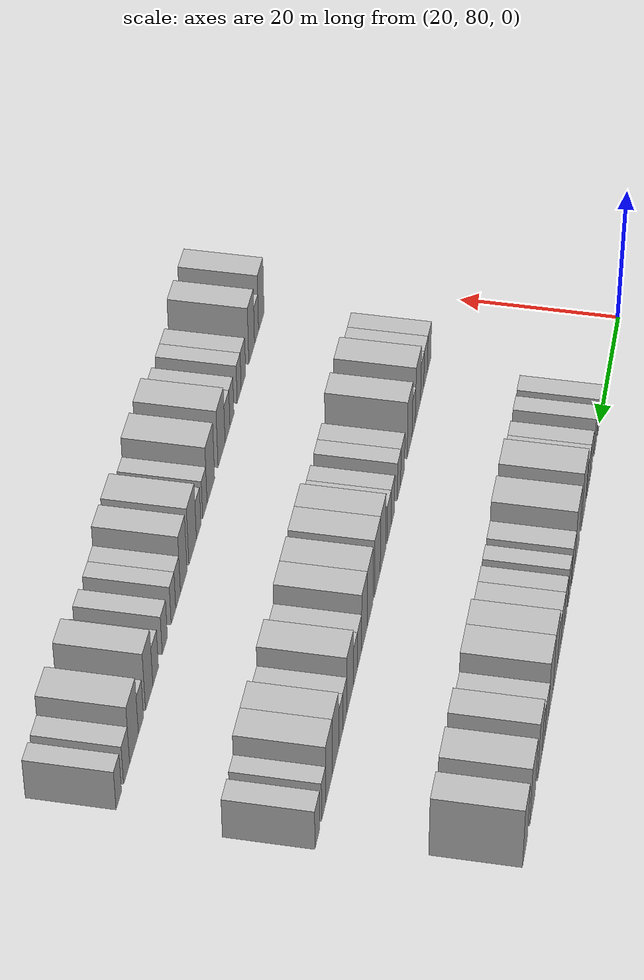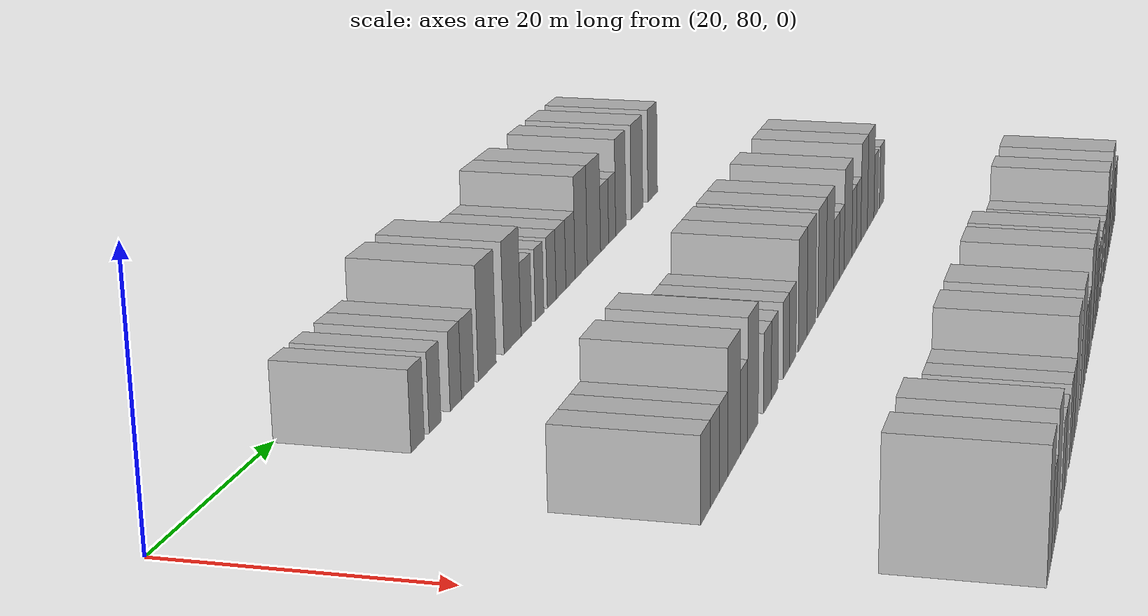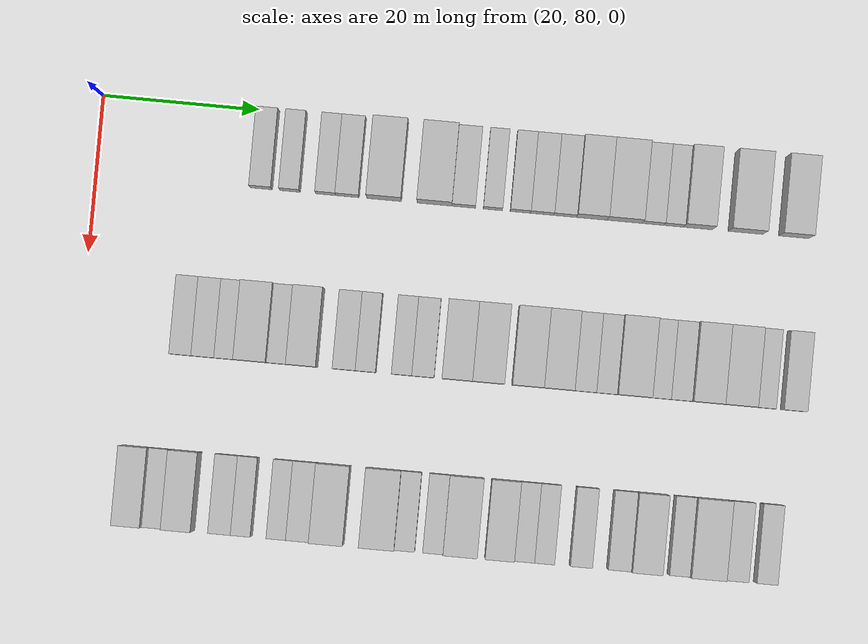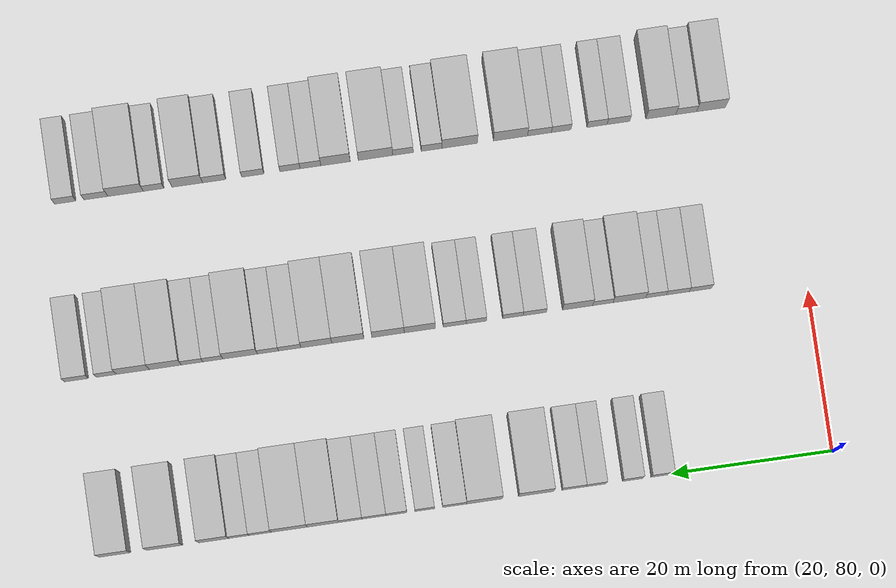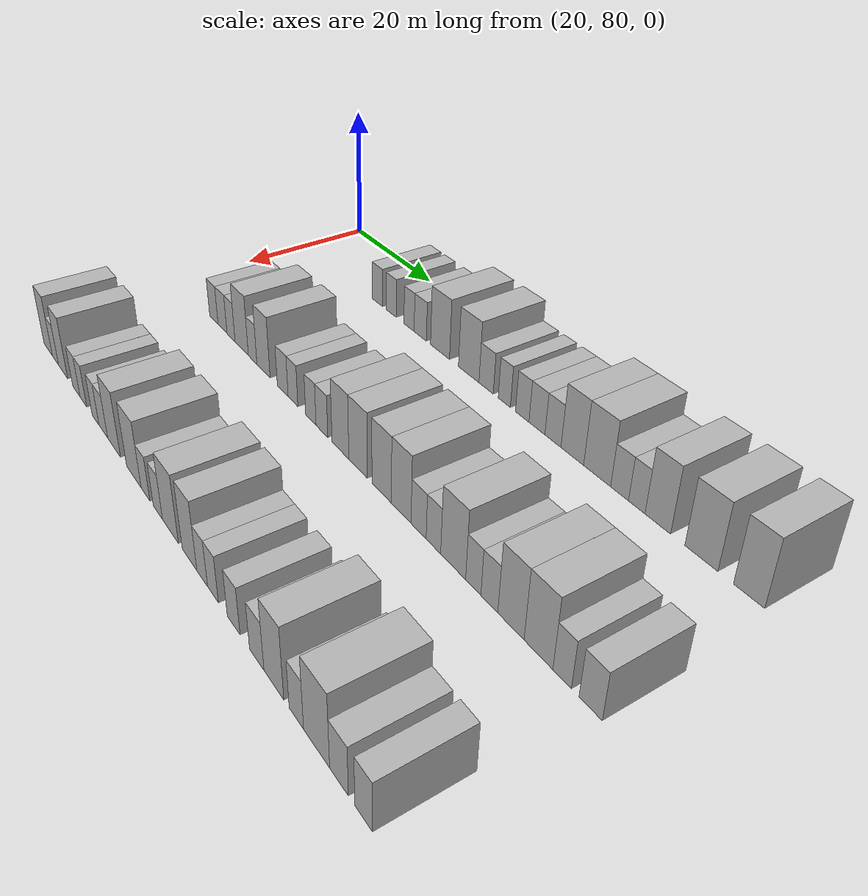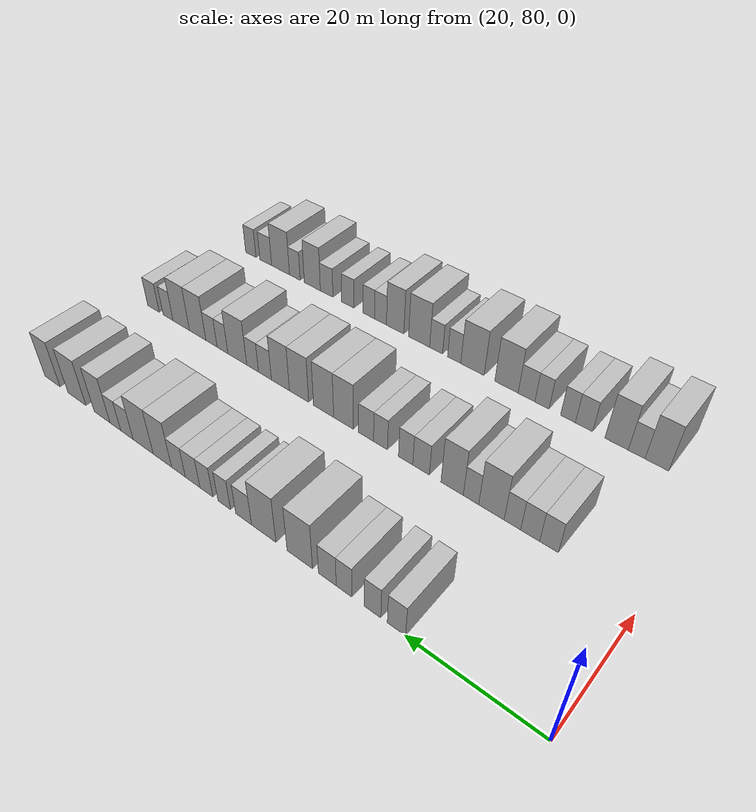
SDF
<sdf version="1.6">
 <world name="default">
  <model name="building_80">
   <static>1</static>
   <pose>25.0000 101.2119 0 0.000000 0.000000 0.000000</pose>
   <link name="link">
    <pose>0 0 3.00 0 0 0</pose>
    <collision name="collision"><geometry><box><size>10.0000 2.7655 6.0000</size></box></geometry></collision>
    <visual name="visual">
     <cast_shadows>0</cast_shadows>
     <geometry><box><size>10.0000 2.7655 6.0000</size></box></geometry>
     <material>
      <script>
       <uri>model://HANNAS_wall/materials/scripts</uri>
       <uri>model://HANNAS_wall/materials/textures</uri>
       <name>vrc/HANNAS_wall</name>
      </script>
     </material>
    </visual>
   </link>
  </model>
  <model name="building_81">
   <static>1</static>
   <pose>25.0000 104.8791 0 0.000000 0.000000 0.000000</pose>
   <link name="link">
    <pose>0 0 3.00 0 0 0</pose>
    <collision name="collision"><geometry><box><size>10.0000 2.5690 6.0000</size></box></geometry></collision>
    <visual name="visual">
     <cast_shadows>0</cast_shadows>
     <geometry><box><size>10.0000 2.5690 6.0000</size></box></geometry>
     <material>
      <script>
       <uri>model://HANNAS_wall/materials/scripts</uri>
       <uri>model://HANNAS_wall/materials/textures</uri>
       <name>vrc/HANNAS_wall</name>
      </script>
     </material>
    </visual>
   </link>
  </model>
  <model name="building_82">
   <static>1</static>
   <pose>25.0000 109.4383 0 0.000000 0.000000 0.000000</pose>
   <link name="link">
    <pose>0 0 3.00 0 0 0</pose>
    <collision name="collision"><geometry><box><size>10.0000 2.5493 6.0000</size></box></geometry></collision>
    <visual name="visual">
     <cast_shadows>0</cast_shadows>
     <geometry><box><size>10.0000 2.5493 6.0000</size></box></geometry>
     <material>
      <script>
       <uri>model://HANNAS_wall/materials/scripts</uri>
       <uri>model://HANNAS_wall/materials/textures</uri>
       <name>vrc/HANNAS_wall</name>
      </script>
     </material>
    </visual>
   </link>
  </model>
  <model name="building_83">
   <static>1</static>
   <pose>25.0000 112.1952 0 0.000000 0.000000 0.000000</pose>
   <link name="link">
    <pose>0 0 3.00 0 0 0</pose>
    <collision name="collision"><geometry><box><size>10.0000 2.9646 6.0000</size></box></geometry></collision>
    <visual name="visual">
     <cast_shadows>0</cast_shadows>
     <geometry><box><size>10.0000 2.9646 6.0000</size></box></geometry>
     <material>
      <script>
       <uri>model://HANNAS_wall/materials/scripts</uri>
       <uri>model://HANNAS_wall/materials/textures</uri>
       <name>vrc/HANNAS_wall</name>
      </script>
     </material>
    </visual>
   </link>
  </model>
  <model name="building_84">
   <static>1</static>
   <pose>25.0000 116.8782 0 0.000000 0.000000 0.000000</pose>
   <link name="link">
    <pose>0 0 4.50 0 0 0</pose>
    <collision name="collision"><geometry><box><size>10.0000 4.4013 9.0000</size></box></geometry></collision>
    <visual name="visual">
     <cast_shadows>0</cast_shadows>
     <geometry><box><size>10.0000 4.4013 9.0000</size></box></geometry>
     <material>
      <script>
       <uri>model://HANNAS_wall/materials/scripts</uri>
       <uri>model://HANNAS_wall/materials/textures</uri>
       <name>vrc/HANNAS_wall</name>
      </script>
     </material>
    </visual>
   </link>
  </model>
  <model name="building_85">
   <static>1</static>
   <pose>25.0000 123.3040 0 0.000000 0.000000 0.000000</pose>
   <link name="link">
    <pose>0 0 4.50 0 0 0</pose>
    <collision name="collision"><geometry><box><size>10.0000 4.4503 9.0000</size></box></geometry></collision>
    <visual name="visual">
     <cast_shadows>0</cast_shadows>
     <geometry><box><size>10.0000 4.4503 9.0000</size></box></geometry>
     <material>
      <script>
       <uri>model://HANNAS_wall/materials/scripts</uri>
       <uri>model://HANNAS_wall/materials/textures</uri>
       <name>vrc/HANNAS_wall</name>
      </script>
     </material>
    </visual>
   </link>
  </model>
  <model name="building_86">
   <static>1</static>
   <pose>25.0000 127.0189 0 0.000000 0.000000 0.000000</pose>
   <link name="link">
    <pose>0 0 3.00 0 0 0</pose>
    <collision name="collision"><geometry><box><size>10.0000 2.9796 6.0000</size></box></geometry></collision>
    <visual name="visual">
     <cast_shadows>0</cast_shadows>
     <geometry><box><size>10.0000 2.9796 6.0000</size></box></geometry>
     <material>
      <script>
       <uri>model://HANNAS_wall/materials/scripts</uri>
       <uri>model://HANNAS_wall/materials/textures</uri>
       <name>vrc/HANNAS_wall</name>
      </script>
     </material>
    </visual>
   </link>
  </model>
  <model name="building_87">
   <static>1</static>
   <pose>25.0000 130.7237 0 0.000000 0.000000 0.000000</pose>
   <link name="link">
    <pose>0 0 3.00 0 0 0</pose>
    <collision name="collision"><geometry><box><size>10.0000 2.4298 6.0000</size></box></geometry></collision>
    <visual name="visual">
     <cast_shadows>0</cast_shadows>
     <geometry><box><size>10.0000 2.4298 6.0000</size></box></geometry>
     <material>
      <script>
       <uri>model://HANNAS_wall/materials/scripts</uri>
       <uri>model://HANNAS_wall/materials/textures</uri>
       <name>vrc/HANNAS_wall</name>
      </script>
     </material>
    </visual>
   </link>
  </model>
  <model name="building_88">
   <static>1</static>
   <pose>25.0000 134.2324 0 0.000000 0.000000 0.000000</pose>
   <link name="link">
    <pose>0 0 3.00 0 0 0</pose>
    <collision name="collision"><geometry><box><size>10.0000 2.5876 6.0000</size></box></geometry></collision>
    <visual name="visual">
     <cast_shadows>0</cast_shadows>
     <geometry><box><size>10.0000 2.5876 6.0000</size></box></geometry>
     <material>
      <script>
       <uri>model://HANNAS_wall/materials/scripts</uri>
       <uri>model://HANNAS_wall/materials/textures</uri>
       <name>vrc/HANNAS_wall</name>
      </script>
     </material>
    </visual>
   </link>
  </model>
  <model name="building_89">
   <static>1</static>
   <pose>25.0000 137.0098 0 0.000000 0.000000 0.000000</pose>
   <link name="link">
    <pose>0 0 3.00 0 0 0</pose>
    <collision name="collision"><geometry><box><size>10.0000 2.9673 6.0000</size></box></geometry></collision>
    <visual name="visual">
     <cast_shadows>0</cast_shadows>
     <geometry><box><size>10.0000 2.9673 6.0000</size></box></geometry>
     <material>
      <script>
       <uri>model://HANNAS_wall/materials/scripts</uri>
       <uri>model://HANNAS_wall/materials/textures</uri>
       <name>vrc/HANNAS_wall</name>
      </script>
     </material>
    </visual>
   </link>
  </model>
  <model name="building_90">
   <static>1</static>
   <pose>25.0000 139.9342 0 0.000000 0.000000 0.000000</pose>
   <link name="link">
    <pose>0 0 3.00 0 0 0</pose>
    <collision name="collision"><geometry><box><size>10.0000 2.8815 6.0000</size></box></geometry></collision>
    <visual name="visual">
     <cast_shadows>0</cast_shadows>
     <geometry><box><size>10.0000 2.8815 6.0000</size></box></geometry>
     <material>
      <script>
       <uri>model://HANNAS_wall/materials/scripts</uri>
       <uri>model://HANNAS_wall/materials/textures</uri>
       <name>vrc/HANNAS_wall</name>
      </script>
     </material>
    </visual>
   </link>
  </model>
  <model name="building_91">
   <static>1</static>
   <pose>25.0000 143.3357 0 0.000000 0.000000 0.000000</pose>
   <link name="link">
    <pose>0 0 4.50 0 0 0</pose>
    <collision name="collision"><geometry><box><size>10.0000 3.9215 9.0000</size></box></geometry></collision>
    <visual name="visual">
     <cast_shadows>0</cast_shadows>
     <geometry><box><size>10.0000 3.9215 9.0000</size></box></geometry>
     <material>
      <script>
       <uri>model://HANNAS_wall/materials/scripts</uri>
       <uri>model://HANNAS_wall/materials/textures</uri>
       <name>vrc/HANNAS_wall</name>
      </script>
     </material>
    </visual>
   </link>
  </model>
  <model name="building_92">
   <static>1</static>
   <pose>25.0000 147.5176 0 0.000000 0.000000 0.000000</pose>
   <link name="link">
    <pose>0 0 4.50 0 0 0</pose>
    <collision name="collision"><geometry><box><size>10.0000 4.4425 9.0000</size></box></geometry></collision>
    <visual name="visual">
     <cast_shadows>0</cast_shadows>
     <geometry><box><size>10.0000 4.4425 9.0000</size></box></geometry>
     <material>
      <script>
       <uri>model://HANNAS_wall/materials/scripts</uri>
       <uri>model://HANNAS_wall/materials/textures</uri>
       <name>vrc/HANNAS_wall</name>
      </script>
     </material>
    </visual>
   </link>
  </model>
  <model name="building_93">
   <static>1</static>
   <pose>25.0000 151.1389 0 0.000000 0.000000 0.000000</pose>
   <link name="link">
    <pose>0 0 3.00 0 0 0</pose>
    <collision name="collision"><geometry><box><size>10.0000 2.7999 6.0000</size></box></geometry></collision>
    <visual name="visual">
     <cast_shadows>0</cast_shadows>
     <geometry><box><size>10.0000 2.7999 6.0000</size></box></geometry>
     <material>
      <script>
       <uri>model://HANNAS_wall/materials/scripts</uri>
       <uri>model://HANNAS_wall/materials/textures</uri>
       <name>vrc/HANNAS_wall</name>
      </script>
     </material>
    </visual>
   </link>
  </model>
  <model name="building_94">
   <static>1</static>
   <pose>25.0000 153.7896 0 0.000000 0.000000 0.000000</pose>
   <link name="link">
    <pose>0 0 3.00 0 0 0</pose>
    <collision name="collision"><geometry><box><size>10.0000 2.5015 6.0000</size></box></geometry></collision>
    <visual name="visual">
     <cast_shadows>0</cast_shadows>
     <geometry><box><size>10.0000 2.5015 6.0000</size></box></geometry>
     <material>
      <script>
       <uri>model://HANNAS_wall/materials/scripts</uri>
       <uri>model://HANNAS_wall/materials/textures</uri>
       <name>vrc/HANNAS_wall</name>
      </script>
     </material>
    </visual>
   </link>
  </model>
  <model name="building_95">
   <static>1</static>
   <pose>25.0000 156.9067 0 0.000000 0.000000 0.000000</pose>
   <link name="link">
    <pose>0 0 4.50 0 0 0</pose>
    <collision name="collision"><geometry><box><size>10.0000 3.7327 9.0000</size></box></geometry></collision>
    <visual name="visual">
     <cast_shadows>0</cast_shadows>
     <geometry><box><size>10.0000 3.7327 9.0000</size></box></geometry>
     <material>
      <script>
       <uri>model://HANNAS_wall/materials/scripts</uri>
       <uri>model://HANNAS_wall/materials/textures</uri>
       <name>vrc/HANNAS_wall</name>
      </script>
     </material>
    </visual>
   </link>
  </model>
  <model name="building_96">
   <static>1</static>
   <pose>25.0000 162.9964 0 0.000000 0.000000 0.000000</pose>
   <link name="link">
    <pose>0 0 4.50 0 0 0</pose>
    <collision name="collision"><geometry><box><size>10.0000 4.4465 9.0000</size></box></geometry></collision>
    <visual name="visual">
     <cast_shadows>0</cast_shadows>
     <geometry><box><size>10.0000 4.4465 9.0000</size></box></geometry>
     <material>
      <script>
       <uri>model://HANNAS_wall/materials/scripts</uri>
       <uri>model://HANNAS_wall/materials/textures</uri>
       <name>vrc/HANNAS_wall</name>
      </script>
     </material>
    </visual>
   </link>
  </model>
  <model name="building_97">
   <static>1</static>
   <pose>25.0000 169.1531 0 0.000000 0.000000 0.000000</pose>
   <link name="link">
    <pose>0 0 4.50 0 0 0</pose>
    <collision name="collision"><geometry><box><size>10.0000 3.8670 9.0000</size></box></geometry></collision>
    <visual name="visual">
     <cast_shadows>0</cast_shadows>
     <geometry><box><size>10.0000 3.8670 9.0000</size></box></geometry>
     <material>
      <script>
       <uri>model://HANNAS_wall/materials/scripts</uri>
       <uri>model://HANNAS_wall/materials/textures</uri>
       <name>vrc/HANNAS_wall</name>
      </script>
     </material>
    </visual>
   </link>
  </model>
  <model name="building_206">
   <static>1</static>
   <pose>47.0000 93.1734 0 0.000000 0.000000 0.000000</pose>
   <link name="link">
    <pose>0 0 3.00 0 0 0</pose>
    <collision name="collision"><geometry><box><size>10.0000 2.7821 6.0000</size></box></geometry></collision>
    <visual name="visual">
     <cast_shadows>0</cast_shadows>
     <geometry><box><size>10.0000 2.7821 6.0000</size></box></geometry>
     <material>
      <script>
       <uri>model://HANNAS_wall/materials/scripts</uri>
       <uri>model://HANNAS_wall/materials/textures</uri>
       <name>vrc/HANNAS_wall</name>
      </script>
     </material>
    </visual>
   </link>
  </model>
  <model name="building_207">
   <static>1</static>
   <pose>47.0000 96.0093 0 0.000000 0.000000 0.000000</pose>
   <link name="link">
    <pose>0 0 3.00 0 0 0</pose>
    <collision name="collision"><geometry><box><size>10.0000 2.8899 6.0000</size></box></geometry></collision>
    <visual name="visual">
     <cast_shadows>0</cast_shadows>
     <geometry><box><size>10.0000 2.8899 6.0000</size></box></geometry>
     <material>
      <script>
       <uri>model://HANNAS_wall/materials/scripts</uri>
       <uri>model://HANNAS_wall/materials/textures</uri>
       <name>vrc/HANNAS_wall</name>
      </script>
     </material>
    </visual>
   </link>
  </model>
  <model name="building_208">
   <static>1</static>
   <pose>47.0000 98.7379 0 0.000000 0.000000 0.000000</pose>
   <link name="link">
    <pose>0 0 3.00 0 0 0</pose>
    <collision name="collision"><geometry><box><size>10.0000 2.5672 6.0000</size></box></geometry></collision>
    <visual name="visual">
     <cast_shadows>0</cast_shadows>
     <geometry><box><size>10.0000 2.5672 6.0000</size></box></geometry>
     <material>
      <script>
       <uri>model://HANNAS_wall/materials/scripts</uri>
       <uri>model://HANNAS_wall/materials/textures</uri>
       <name>vrc/HANNAS_wall</name>
      </script>
     </material>
    </visual>
   </link>
  </model>
  <model name="building_209">
   <static>1</static>
   <pose>47.0000 102.0580 0 0.000000 0.000000 0.000000</pose>
   <link name="link">
    <pose>0 0 4.50 0 0 0</pose>
    <collision name="collision"><geometry><box><size>10.0000 4.0730 9.0000</size></box></geometry></collision>
    <visual name="visual">
     <cast_shadows>0</cast_shadows>
     <geometry><box><size>10.0000 4.0730 9.0000</size></box></geometry>
     <material>
      <script>
       <uri>model://HANNAS_wall/materials/scripts</uri>
       <uri>model://HANNAS_wall/materials/textures</uri>
       <name>vrc/HANNAS_wall</name>
      </script>
     </material>
    </visual>
   </link>
  </model>
  <model name="building_210">
   <static>1</static>
   <pose>47.0000 105.3585 0 0.000000 0.000000 0.000000</pose>
   <link name="link">
    <pose>0 0 3.00 0 0 0</pose>
    <collision name="collision"><geometry><box><size>10.0000 2.5282 6.0000</size></box></geometry></collision>
    <visual name="visual">
     <cast_shadows>0</cast_shadows>
     <geometry><box><size>10.0000 2.5282 6.0000</size></box></geometry>
     <material>
      <script>
       <uri>model://HANNAS_wall/materials/scripts</uri>
       <uri>model://HANNAS_wall/materials/textures</uri>
       <name>vrc/HANNAS_wall</name>
      </script>
     </material>
    </visual>
   </link>
  </model>
  <model name="building_211">
   <static>1</static>
   <pose>47.0000 108.5027 0 0.000000 0.000000 0.000000</pose>
   <link name="link">
    <pose>0 0 4.50 0 0 0</pose>
    <collision name="collision"><geometry><box><size>10.0000 3.7601 9.0000</size></box></geometry></collision>
    <visual name="visual">
     <cast_shadows>0</cast_shadows>
     <geometry><box><size>10.0000 3.7601 9.0000</size></box></geometry>
     <material>
      <script>
       <uri>model://HANNAS_wall/materials/scripts</uri>
       <uri>model://HANNAS_wall/materials/textures</uri>
       <name>vrc/HANNAS_wall</name>
      </script>
     </material>
    </visual>
   </link>
  </model>
  <model name="building_212">
   <static>1</static>
   <pose>47.0000 113.8342 0 0.000000 0.000000 0.000000</pose>
   <link name="link">
    <pose>0 0 3.00 0 0 0</pose>
    <collision name="collision"><geometry><box><size>10.0000 2.9029 6.0000</size></box></geometry></collision>
    <visual name="visual">
     <cast_shadows>0</cast_shadows>
     <geometry><box><size>10.0000 2.9029 6.0000</size></box></geometry>
     <material>
      <script>
       <uri>model://HANNAS_wall/materials/scripts</uri>
       <uri>model://HANNAS_wall/materials/textures</uri>
       <name>vrc/HANNAS_wall</name>
      </script>
     </material>
    </visual>
   </link>
  </model>
  <model name="building_213">
   <static>1</static>
   <pose>47.0000 116.5658 0 0.000000 0.000000 0.000000</pose>
   <link name="link">
    <pose>0 0 3.00 0 0 0</pose>
    <collision name="collision"><geometry><box><size>10.0000 2.5604 6.0000</size></box></geometry></collision>
    <visual name="visual">
     <cast_shadows>0</cast_shadows>
     <geometry><box><size>10.0000 2.5604 6.0000</size></box></geometry>
     <material>
      <script>
       <uri>model://HANNAS_wall/materials/scripts</uri>
       <uri>model://HANNAS_wall/materials/textures</uri>
       <name>vrc/HANNAS_wall</name>
      </script>
     </material>
    </visual>
   </link>
  </model>
  <model name="building_214">
   <static>1</static>
   <pose>47.0000 121.1324 0 0.000000 0.000000 0.000000</pose>
   <link name="link">
    <pose>0 0 3.00 0 0 0</pose>
    <collision name="collision"><geometry><box><size>10.0000 2.5727 6.0000</size></box></geometry></collision>
    <visual name="visual">
     <cast_shadows>0</cast_shadows>
     <geometry><box><size>10.0000 2.5727 6.0000</size></box></geometry>
     <material>
      <script>
       <uri>model://HANNAS_wall/materials/scripts</uri>
       <uri>model://HANNAS_wall/materials/textures</uri>
       <name>vrc/HANNAS_wall</name>
      </script>
     </material>
    </visual>
   </link>
  </model>
  <model name="building_215">
   <static>1</static>
   <pose>47.0000 123.8304 0 0.000000 0.000000 0.000000</pose>
   <link name="link">
    <pose>0 0 3.00 0 0 0</pose>
    <collision name="collision"><geometry><box><size>10.0000 2.8232 6.0000</size></box></geometry></collision>
    <visual name="visual">
     <cast_shadows>0</cast_shadows>
     <geometry><box><size>10.0000 2.8232 6.0000</size></box></geometry>
     <material>
      <script>
       <uri>model://HANNAS_wall/materials/scripts</uri>
       <uri>model://HANNAS_wall/materials/textures</uri>
       <name>vrc/HANNAS_wall</name>
      </script>
     </material>
    </visual>
   </link>
  </model>
  <model name="building_216">
   <static>1</static>
   <pose>47.0000 128.1667 0 0.000000 0.000000 0.000000</pose>
   <link name="link">
    <pose>0 0 4.50 0 0 0</pose>
    <collision name="collision"><geometry><box><size>10.0000 3.8495 9.0000</size></box></geometry></collision>
    <visual name="visual">
     <cast_shadows>0</cast_shadows>
     <geometry><box><size>10.0000 3.8495 9.0000</size></box></geometry>
     <material>
      <script>
       <uri>model://HANNAS_wall/materials/scripts</uri>
       <uri>model://HANNAS_wall/materials/textures</uri>
       <name>vrc/HANNAS_wall</name>
      </script>
     </material>
    </visual>
   </link>
  </model>
  <model name="building_217">
   <static>1</static>
   <pose>47.0000 132.1046 0 0.000000 0.000000 0.000000</pose>
   <link name="link">
    <pose>0 0 4.50 0 0 0</pose>
    <collision name="collision"><geometry><box><size>10.0000 4.0261 9.0000</size></box></geometry></collision>
    <visual name="visual">
     <cast_shadows>0</cast_shadows>
     <geometry><box><size>10.0000 4.0261 9.0000</size></box></geometry>
     <material>
      <script>
       <uri>model://HANNAS_wall/materials/scripts</uri>
       <uri>model://HANNAS_wall/materials/textures</uri>
       <name>vrc/HANNAS_wall</name>
      </script>
     </material>
    </visual>
   </link>
  </model>
  <model name="building_218">
   <static>1</static>
   <pose>47.0000 137.1034 0 0.000000 0.000000 0.000000</pose>
   <link name="link">
    <pose>0 0 4.50 0 0 0</pose>
    <collision name="collision"><geometry><box><size>10.0000 3.9715 9.0000</size></box></geometry></collision>
    <visual name="visual">
     <cast_shadows>0</cast_shadows>
     <geometry><box><size>10.0000 3.9715 9.0000</size></box></geometry>
     <material>
      <script>
       <uri>model://HANNAS_wall/materials/scripts</uri>
       <uri>model://HANNAS_wall/materials/textures</uri>
       <name>vrc/HANNAS_wall</name>
      </script>
     </material>
    </visual>
   </link>
  </model>
  <model name="building_219">
   <static>1</static>
   <pose>47.0000 141.0083 0 0.000000 0.000000 0.000000</pose>
   <link name="link">
    <pose>0 0 4.50 0 0 0</pose>
    <collision name="collision"><geometry><box><size>10.0000 3.8384 9.0000</size></box></geometry></collision>
    <visual name="visual">
     <cast_shadows>0</cast_shadows>
     <geometry><box><size>10.0000 3.8384 9.0000</size></box></geometry>
     <material>
      <script>
       <uri>model://HANNAS_wall/materials/scripts</uri>
       <uri>model://HANNAS_wall/materials/textures</uri>
       <name>vrc/HANNAS_wall</name>
      </script>
     </material>
    </visual>
   </link>
  </model>
  <model name="building_220">
   <static>1</static>
   <pose>47.0000 144.3387 0 0.000000 0.000000 0.000000</pose>
   <link name="link">
    <pose>0 0 3.00 0 0 0</pose>
    <collision name="collision"><geometry><box><size>10.0000 2.8223 6.0000</size></box></geometry></collision>
    <visual name="visual">
     <cast_shadows>0</cast_shadows>
     <geometry><box><size>10.0000 2.8223 6.0000</size></box></geometry>
     <material>
      <script>
       <uri>model://HANNAS_wall/materials/scripts</uri>
       <uri>model://HANNAS_wall/materials/textures</uri>
       <name>vrc/HANNAS_wall</name>
      </script>
     </material>
    </visual>
   </link>
  </model>
  <model name="building_221">
   <static>1</static>
   <pose>47.0000 147.0625 0 0.000000 0.000000 0.000000</pose>
   <link name="link">
    <pose>0 0 3.00 0 0 0</pose>
    <collision name="collision"><geometry><box><size>10.0000 2.6254 6.0000</size></box></geometry></collision>
    <visual name="visual">
     <cast_shadows>0</cast_shadows>
     <geometry><box><size>10.0000 2.6254 6.0000</size></box></geometry>
     <material>
      <script>
       <uri>model://HANNAS_wall/materials/scripts</uri>
       <uri>model://HANNAS_wall/materials/textures</uri>
       <name>vrc/HANNAS_wall</name>
      </script>
     </material>
    </visual>
   </link>
  </model>
  <model name="building_222">
   <static>1</static>
   <pose>47.0000 150.5226 0 0.000000 0.000000 0.000000</pose>
   <link name="link">
    <pose>0 0 4.50 0 0 0</pose>
    <collision name="collision"><geometry><box><size>10.0000 4.2948 9.0000</size></box></geometry></collision>
    <visual name="visual">
     <cast_shadows>0</cast_shadows>
     <geometry><box><size>10.0000 4.2948 9.0000</size></box></geometry>
     <material>
      <script>
       <uri>model://HANNAS_wall/materials/scripts</uri>
       <uri>model://HANNAS_wall/materials/textures</uri>
       <name>vrc/HANNAS_wall</name>
      </script>
     </material>
    </visual>
   </link>
  </model>
  <model name="building_223">
   <static>1</static>
   <pose>47.0000 153.9206 0 0.000000 0.000000 0.000000</pose>
   <link name="link">
    <pose>0 0 3.00 0 0 0</pose>
    <collision name="collision"><geometry><box><size>10.0000 2.5011 6.0000</size></box></geometry></collision>
    <visual name="visual">
     <cast_shadows>0</cast_shadows>
     <geometry><box><size>10.0000 2.5011 6.0000</size></box></geometry>
     <material>
      <script>
       <uri>model://HANNAS_wall/materials/scripts</uri>
       <uri>model://HANNAS_wall/materials/textures</uri>
       <name>vrc/HANNAS_wall</name>
      </script>
     </material>
    </visual>
   </link>
  </model>
  <model name="building_224">
   <static>1</static>
   <pose>47.0000 156.5076 0 0.000000 0.000000 0.000000</pose>
   <link name="link">
    <pose>0 0 3.00 0 0 0</pose>
    <collision name="collision"><geometry><box><size>10.0000 2.6729 6.0000</size></box></geometry></collision>
    <visual name="visual">
     <cast_shadows>0</cast_shadows>
     <geometry><box><size>10.0000 2.6729 6.0000</size></box></geometry>
     <material>
      <script>
       <uri>model://HANNAS_wall/materials/scripts</uri>
       <uri>model://HANNAS_wall/materials/textures</uri>
       <name>vrc/HANNAS_wall</name>
      </script>
     </material>
    </visual>
   </link>
  </model>
  <model name="building_225">
   <static>1</static>
   <pose>47.0000 159.8294 0 0.000000 0.000000 0.000000</pose>
   <link name="link">
    <pose>0 0 4.50 0 0 0</pose>
    <collision name="collision"><geometry><box><size>10.0000 3.9707 9.0000</size></box></geometry></collision>
    <visual name="visual">
     <cast_shadows>0</cast_shadows>
     <geometry><box><size>10.0000 3.9707 9.0000</size></box></geometry>
     <material>
      <script>
       <uri>model://HANNAS_wall/materials/scripts</uri>
       <uri>model://HANNAS_wall/materials/textures</uri>
       <name>vrc/HANNAS_wall</name>
      </script>
     </material>
    </visual>
   </link>
  </model>
  <model name="building_226">
   <static>1</static>
   <pose>47.0000 163.8632 0 0.000000 0.000000 0.000000</pose>
   <link name="link">
    <pose>0 0 4.50 0 0 0</pose>
    <collision name="collision"><geometry><box><size>10.0000 4.0968 9.0000</size></box></geometry></collision>
    <visual name="visual">
     <cast_shadows>0</cast_shadows>
     <geometry><box><size>10.0000 4.0968 9.0000</size></box></geometry>
     <material>
      <script>
       <uri>model://HANNAS_wall/materials/scripts</uri>
       <uri>model://HANNAS_wall/materials/textures</uri>
       <name>vrc/HANNAS_wall</name>
      </script>
     </material>
    </visual>
   </link>
  </model>
  <model name="building_227">
   <static>1</static>
   <pose>47.0000 167.1614 0 0.000000 0.000000 0.000000</pose>
   <link name="link">
    <pose>0 0 3.00 0 0 0</pose>
    <collision name="collision"><geometry><box><size>10.0000 2.4997 6.0000</size></box></geometry></collision>
    <visual name="visual">
     <cast_shadows>0</cast_shadows>
     <geometry><box><size>10.0000 2.4997 6.0000</size></box></geometry>
     <material>
      <script>
       <uri>model://HANNAS_wall/materials/scripts</uri>
       <uri>model://HANNAS_wall/materials/textures</uri>
       <name>vrc/HANNAS_wall</name>
      </script>
     </material>
    </visual>
   </link>
  </model>
  <model name="building_228">
   <static>1</static>
   <pose>47.0000 170.8980 0 0.000000 0.000000 0.000000</pose>
   <link name="link">
    <pose>0 0 3.00 0 0 0</pose>
    <collision name="collision"><geometry><box><size>10.0000 2.9734 6.0000</size></box></geometry></collision>
    <visual name="visual">
     <cast_shadows>0</cast_shadows>
     <geometry><box><size>10.0000 2.9734 6.0000</size></box></geometry>
     <material>
      <script>
       <uri>model://HANNAS_wall/materials/scripts</uri>
       <uri>model://HANNAS_wall/materials/textures</uri>
       <name>vrc/HANNAS_wall</name>
      </script>
     </material>
    </visual>
   </link>
  </model>
  <model name="building_336">
   <static>1</static>
   <pose>69.0000 88.5583 0 0.000000 0.000000 0.000000</pose>
   <link name="link">
    <pose>0 0 4.50 0 0 0</pose>
    <collision name="collision"><geometry><box><size>10.0000 3.6173 9.0000</size></box></geometry></collision>
    <visual name="visual">
     <cast_shadows>0</cast_shadows>
     <geometry><box><size>10.0000 3.6173 9.0000</size></box></geometry>
     <material>
      <script>
       <uri>model://HANNAS_wall/materials/scripts</uri>
       <uri>model://HANNAS_wall/materials/textures</uri>
       <name>vrc/HANNAS_wall</name>
      </script>
     </material>
    </visual>
   </link>
  </model>
  <model name="building_337">
   <static>1</static>
   <pose>69.0000 91.6703 0 0.000000 0.000000 0.000000</pose>
   <link name="link">
    <pose>0 0 3.00 0 0 0</pose>
    <collision name="collision"><geometry><box><size>10.0000 2.6068 6.0000</size></box></geometry></collision>
    <visual name="visual">
     <cast_shadows>0</cast_shadows>
     <geometry><box><size>10.0000 2.6068 6.0000</size></box></geometry>
     <material>
      <script>
       <uri>model://HANNAS_wall/materials/scripts</uri>
       <uri>model://HANNAS_wall/materials/textures</uri>
       <name>vrc/HANNAS_wall</name>
      </script>
     </material>
    </visual>
   </link>
  </model>
  <model name="building_338">
   <static>1</static>
   <pose>69.0000 94.8399 0 0.000000 0.000000 0.000000</pose>
   <link name="link">
    <pose>0 0 4.50 0 0 0</pose>
    <collision name="collision"><geometry><box><size>10.0000 3.7324 9.0000</size></box></geometry></collision>
    <visual name="visual">
     <cast_shadows>0</cast_shadows>
     <geometry><box><size>10.0000 3.7324 9.0000</size></box></geometry>
     <material>
      <script>
       <uri>model://HANNAS_wall/materials/scripts</uri>
       <uri>model://HANNAS_wall/materials/textures</uri>
       <name>vrc/HANNAS_wall</name>
      </script>
     </material>
    </visual>
   </link>
  </model>
  <model name="building_339">
   <static>1</static>
   <pose>69.0000 100.1365 0 0.000000 0.000000 0.000000</pose>
   <link name="link">
    <pose>0 0 3.00 0 0 0</pose>
    <collision name="collision"><geometry><box><size>10.0000 2.8608 6.0000</size></box></geometry></collision>
    <visual name="visual">
     <cast_shadows>0</cast_shadows>
     <geometry><box><size>10.0000 2.8608 6.0000</size></box></geometry>
     <material>
      <script>
       <uri>model://HANNAS_wall/materials/scripts</uri>
       <uri>model://HANNAS_wall/materials/textures</uri>
       <name>vrc/HANNAS_wall</name>
      </script>
     </material>
    </visual>
   </link>
  </model>
  <model name="building_340">
   <static>1</static>
   <pose>69.0000 102.8180 0 0.000000 0.000000 0.000000</pose>
   <link name="link">
    <pose>0 0 3.00 0 0 0</pose>
    <collision name="collision"><geometry><box><size>10.0000 2.5020 6.0000</size></box></geometry></collision>
    <visual name="visual">
     <cast_shadows>0</cast_shadows>
     <geometry><box><size>10.0000 2.5020 6.0000</size></box></geometry>
     <material>
      <script>
       <uri>model://HANNAS_wall/materials/scripts</uri>
       <uri>model://HANNAS_wall/materials/textures</uri>
       <name>vrc/HANNAS_wall</name>
      </script>
     </material>
    </visual>
   </link>
  </model>
  <model name="building_341">
   <static>1</static>
   <pose>69.0000 107.2971 0 0.000000 0.000000 0.000000</pose>
   <link name="link">
    <pose>0 0 3.00 0 0 0</pose>
    <collision name="collision"><geometry><box><size>10.0000 2.4564 6.0000</size></box></geometry></collision>
    <visual name="visual">
     <cast_shadows>0</cast_shadows>
     <geometry><box><size>10.0000 2.4564 6.0000</size></box></geometry>
     <material>
      <script>
       <uri>model://HANNAS_wall/materials/scripts</uri>
       <uri>model://HANNAS_wall/materials/textures</uri>
       <name>vrc/HANNAS_wall</name>
      </script>
     </material>
    </visual>
   </link>
  </model>
  <model name="building_342">
   <static>1</static>
   <pose>69.0000 110.0156 0 0.000000 0.000000 0.000000</pose>
   <link name="link">
    <pose>0 0 3.00 0 0 0</pose>
    <collision name="collision"><geometry><box><size>10.0000 2.9806 6.0000</size></box></geometry></collision>
    <visual name="visual">
     <cast_shadows>0</cast_shadows>
     <geometry><box><size>10.0000 2.9806 6.0000</size></box></geometry>
     <material>
      <script>
       <uri>model://HANNAS_wall/materials/scripts</uri>
       <uri>model://HANNAS_wall/materials/textures</uri>
       <name>vrc/HANNAS_wall</name>
      </script>
     </material>
    </visual>
   </link>
  </model>
  <model name="building_343">
   <static>1</static>
   <pose>69.0000 113.6379 0 0.000000 0.000000 0.000000</pose>
   <link name="link">
    <pose>0 0 4.50 0 0 0</pose>
    <collision name="collision"><geometry><box><size>10.0000 4.2638 9.0000</size></box></geometry></collision>
    <visual name="visual">
     <cast_shadows>0</cast_shadows>
     <geometry><box><size>10.0000 4.2638 9.0000</size></box></geometry>
     <material>
      <script>
       <uri>model://HANNAS_wall/materials/scripts</uri>
       <uri>model://HANNAS_wall/materials/textures</uri>
       <name>vrc/HANNAS_wall</name>
      </script>
     </material>
    </visual>
   </link>
  </model>
  <model name="building_344">
   <static>1</static>
   <pose>69.0000 119.9933 0 0.000000 0.000000 0.000000</pose>
   <link name="link">
    <pose>0 0 4.50 0 0 0</pose>
    <collision name="collision"><geometry><box><size>10.0000 4.4470 9.0000</size></box></geometry></collision>
    <visual name="visual">
     <cast_shadows>0</cast_shadows>
     <geometry><box><size>10.0000 4.4470 9.0000</size></box></geometry>
     <material>
      <script>
       <uri>model://HANNAS_wall/materials/scripts</uri>
       <uri>model://HANNAS_wall/materials/textures</uri>
       <name>vrc/HANNAS_wall</name>
      </script>
     </material>
    </visual>
   </link>
  </model>
  <model name="building_345">
   <static>1</static>
   <pose>69.0000 123.5059 0 0.000000 0.000000 0.000000</pose>
   <link name="link">
    <pose>0 0 3.00 0 0 0</pose>
    <collision name="collision"><geometry><box><size>10.0000 2.5781 6.0000</size></box></geometry></collision>
    <visual name="visual">
     <cast_shadows>0</cast_shadows>
     <geometry><box><size>10.0000 2.5781 6.0000</size></box></geometry>
     <material>
      <script>
       <uri>model://HANNAS_wall/materials/scripts</uri>
       <uri>model://HANNAS_wall/materials/textures</uri>
       <name>vrc/HANNAS_wall</name>
      </script>
     </material>
    </visual>
   </link>
  </model>
  <model name="building_346">
   <static>1</static>
   <pose>69.0000 127.0817 0 0.000000 0.000000 0.000000</pose>
   <link name="link">
    <pose>0 0 3.00 0 0 0</pose>
    <collision name="collision"><geometry><box><size>10.0000 2.5736 6.0000</size></box></geometry></collision>
    <visual name="visual">
     <cast_shadows>0</cast_shadows>
     <geometry><box><size>10.0000 2.5736 6.0000</size></box></geometry>
     <material>
      <script>
       <uri>model://HANNAS_wall/materials/scripts</uri>
       <uri>model://HANNAS_wall/materials/textures</uri>
       <name>vrc/HANNAS_wall</name>
      </script>
     </material>
    </visual>
   </link>
  </model>
  <model name="building_347">
   <static>1</static>
   <pose>69.0000 130.5165 0 0.000000 0.000000 0.000000</pose>
   <link name="link">
    <pose>0 0 4.50 0 0 0</pose>
    <collision name="collision"><geometry><box><size>10.0000 4.2959 9.0000</size></box></geometry></collision>
    <visual name="visual">
     <cast_shadows>0</cast_shadows>
     <geometry><box><size>10.0000 4.2959 9.0000</size></box></geometry>
     <material>
      <script>
       <uri>model://HANNAS_wall/materials/scripts</uri>
       <uri>model://HANNAS_wall/materials/textures</uri>
       <name>vrc/HANNAS_wall</name>
      </script>
     </material>
    </visual>
   </link>
  </model>
  <model name="building_348">
   <static>1</static>
   <pose>69.0000 135.5004 0 0.000000 0.000000 0.000000</pose>
   <link name="link">
    <pose>0 0 4.50 0 0 0</pose>
    <collision name="collision"><geometry><box><size>10.0000 3.6720 9.0000</size></box></geometry></collision>
    <visual name="visual">
     <cast_shadows>0</cast_shadows>
     <geometry><box><size>10.0000 3.6720 9.0000</size></box></geometry>
     <material>
      <script>
       <uri>model://HANNAS_wall/materials/scripts</uri>
       <uri>model://HANNAS_wall/materials/textures</uri>
       <name>vrc/HANNAS_wall</name>
      </script>
     </material>
    </visual>
   </link>
  </model>
  <model name="building_349">
   <static>1</static>
   <pose>69.0000 138.6272 0 0.000000 0.000000 0.000000</pose>
   <link name="link">
    <pose>0 0 3.00 0 0 0</pose>
    <collision name="collision"><geometry><box><size>10.0000 2.5815 6.0000</size></box></geometry></collision>
    <visual name="visual">
     <cast_shadows>0</cast_shadows>
     <geometry><box><size>10.0000 2.5815 6.0000</size></box></geometry>
     <material>
      <script>
       <uri>model://HANNAS_wall/materials/scripts</uri>
       <uri>model://HANNAS_wall/materials/textures</uri>
       <name>vrc/HANNAS_wall</name>
      </script>
     </material>
    </visual>
   </link>
  </model>
  <model name="building_350">
   <static>1</static>
   <pose>69.0000 141.1783 0 0.000000 0.000000 0.000000</pose>
   <link name="link">
    <pose>0 0 3.00 0 0 0</pose>
    <collision name="collision"><geometry><box><size>10.0000 2.5206 6.0000</size></box></geometry></collision>
    <visual name="visual">
     <cast_shadows>0</cast_shadows>
     <geometry><box><size>10.0000 2.5206 6.0000</size></box></geometry>
     <material>
      <script>
       <uri>model://HANNAS_wall/materials/scripts</uri>
       <uri>model://HANNAS_wall/materials/textures</uri>
       <name>vrc/HANNAS_wall</name>
      </script>
     </material>
    </visual>
   </link>
  </model>
  <model name="building_351">
   <static>1</static>
   <pose>69.0000 145.8238 0 0.000000 0.000000 0.000000</pose>
   <link name="link">
    <pose>0 0 3.00 0 0 0</pose>
    <collision name="collision"><geometry><box><size>10.0000 2.7705 6.0000</size></box></geometry></collision>
    <visual name="visual">
     <cast_shadows>0</cast_shadows>
     <geometry><box><size>10.0000 2.7705 6.0000</size></box></geometry>
     <material>
      <script>
       <uri>model://HANNAS_wall/materials/scripts</uri>
       <uri>model://HANNAS_wall/materials/textures</uri>
       <name>vrc/HANNAS_wall</name>
      </script>
     </material>
    </visual>
   </link>
  </model>
  <model name="building_352">
   <static>1</static>
   <pose>69.0000 150.6652 0 0.000000 0.000000 0.000000</pose>
   <link name="link">
    <pose>0 0 3.00 0 0 0</pose>
    <collision name="collision"><geometry><box><size>10.0000 2.9123 6.0000</size></box></geometry></collision>
    <visual name="visual">
     <cast_shadows>0</cast_shadows>
     <geometry><box><size>10.0000 2.9123 6.0000</size></box></geometry>
     <material>
      <script>
       <uri>model://HANNAS_wall/materials/scripts</uri>
       <uri>model://HANNAS_wall/materials/textures</uri>
       <name>vrc/HANNAS_wall</name>
      </script>
     </material>
    </visual>
   </link>
  </model>
  <model name="building_353">
   <static>1</static>
   <pose>69.0000 154.0265 0 0.000000 0.000000 0.000000</pose>
   <link name="link">
    <pose>0 0 4.50 0 0 0</pose>
    <collision name="collision"><geometry><box><size>10.0000 3.8102 9.0000</size></box></geometry></collision>
    <visual name="visual">
     <cast_shadows>0</cast_shadows>
     <geometry><box><size>10.0000 3.8102 9.0000</size></box></geometry>
     <material>
      <script>
       <uri>model://HANNAS_wall/materials/scripts</uri>
       <uri>model://HANNAS_wall/materials/textures</uri>
       <name>vrc/HANNAS_wall</name>
      </script>
     </material>
    </visual>
   </link>
  </model>
  <model name="building_354">
   <static>1</static>
   <pose>69.0000 158.2254 0 0.000000 0.000000 0.000000</pose>
   <link name="link">
    <pose>0 0 3.00 0 0 0</pose>
    <collision name="collision"><geometry><box><size>10.0000 2.5875 6.0000</size></box></geometry></collision>
    <visual name="visual">
     <cast_shadows>0</cast_shadows>
     <geometry><box><size>10.0000 2.5875 6.0000</size></box></geometry>
     <material>
      <script>
       <uri>model://HANNAS_wall/materials/scripts</uri>
       <uri>model://HANNAS_wall/materials/textures</uri>
       <name>vrc/HANNAS_wall</name>
      </script>
     </material>
    </visual>
   </link>
  </model>
  <model name="building_355">
   <static>1</static>
   <pose>69.0000 161.7295 0 0.000000 0.000000 0.000000</pose>
   <link name="link">
    <pose>0 0 4.50 0 0 0</pose>
    <collision name="collision"><geometry><box><size>10.0000 4.4208 9.0000</size></box></geometry></collision>
    <visual name="visual">
     <cast_shadows>0</cast_shadows>
     <geometry><box><size>10.0000 4.4208 9.0000</size></box></geometry>
     <material>
      <script>
       <uri>model://HANNAS_wall/materials/scripts</uri>
       <uri>model://HANNAS_wall/materials/textures</uri>
       <name>vrc/HANNAS_wall</name>
      </script>
     </material>
    </visual>
   </link>
  </model>
  <model name="building_356">
   <static>1</static>
   <pose>69.0000 165.4356 0 0.000000 0.000000 0.000000</pose>
   <link name="link">
    <pose>0 0 3.00 0 0 0</pose>
    <collision name="collision"><geometry><box><size>10.0000 2.9914 6.0000</size></box></geometry></collision>
    <visual name="visual">
     <cast_shadows>0</cast_shadows>
     <geometry><box><size>10.0000 2.9914 6.0000</size></box></geometry>
     <material>
      <script>
       <uri>model://HANNAS_wall/materials/scripts</uri>
       <uri>model://HANNAS_wall/materials/textures</uri>
       <name>vrc/HANNAS_wall</name>
      </script>
     </material>
    </visual>
   </link>
  </model>
  <model name="building_357">
   <static>1</static>
   <pose>69.0000 169.2582 0 0.000000 0.000000 0.000000</pose>
   <link name="link">
    <pose>0 0 3.00 0 0 0</pose>
    <collision name="collision"><geometry><box><size>10.0000 2.6540 6.0000</size></box></geometry></collision>
    <visual name="visual">
     <cast_shadows>0</cast_shadows>
     <geometry><box><size>10.0000 2.6540 6.0000</size></box></geometry>
     <material>
      <script>
       <uri>model://HANNAS_wall/materials/scripts</uri>
       <uri>model://HANNAS_wall/materials/textures</uri>
       <name>vrc/HANNAS_wall</name>
      </script>
     </material>
    </visual>
   </link>
  </model>
 </world>
</sdf>
